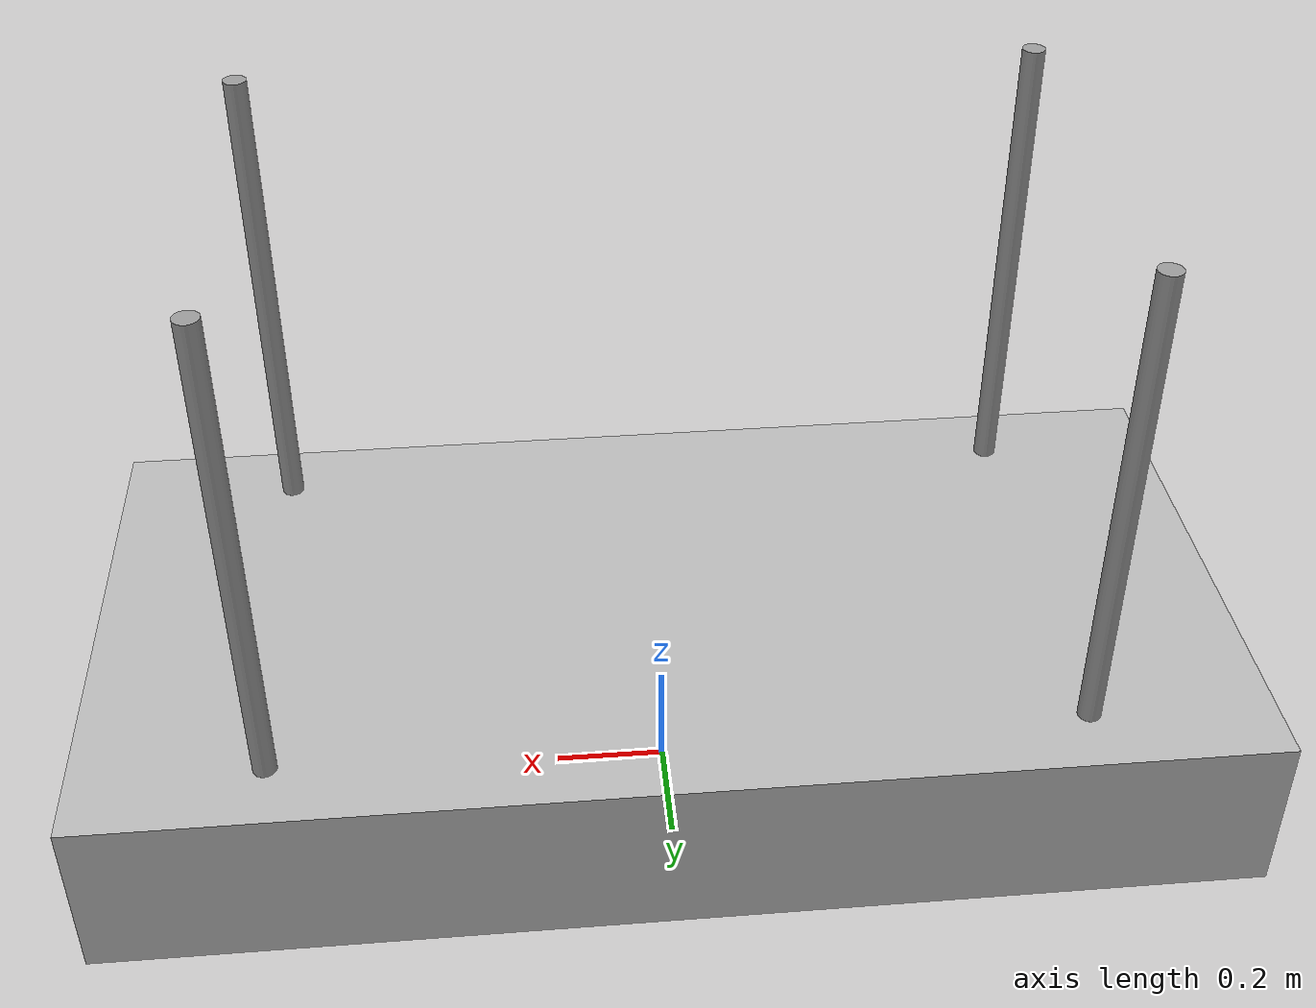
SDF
<?xml version='1.0'?>
<sdf version='1.5'>
  <model name="mobile_base">
    <link name='chassis'>
      <pose>0 0 .25 0 0 0</pose>

      <inertial>
        <mass>20.0</mass>
        <pose>-0.1 0 -0.1 0 0 0</pose>
        <inertia>
          <ixx>0.5</ixx>
          <iyy>1.0</iyy>
          <izz>0.1</izz>
        </inertia>
      </inertial>

      <collision name='collision'>
        <geometry>
          <box>
            <size>2 1 0.3</size>
          </box>
        </geometry>
      </collision>

      <visual name='visual'>
        <geometry>
          <box>
            <size>2 1 0.3</size>
          </box>
        </geometry>
      </visual>

      <collision name="front_left_leg">
        <pose>0.68 0.38 0.5 0 0 0</pose>
        <geometry>
          <cylinder>
            <radius>0.02</radius>
            <length>1.0</length>
          </cylinder>
        </geometry>
      </collision>
      <visual name="front_left_leg">
        <pose>0.68 0.38 0.5 0 0 0</pose>
        <geometry>
          <cylinder>
            <radius>0.02</radius>
            <length>1.0</length>
          </cylinder>
        </geometry>
        <material>
          <script>
            <uri>file://media/materials/scripts/gazebo.material</uri>
            <name>Gazebo/Grey</name>
          </script>
        </material>
      </visual>
      <collision name="front_right_leg">
        <pose>0.68 -0.38 0.5 0 0 0</pose>
        <geometry>
          <cylinder>
            <radius>0.02</radius>
            <length>1.0</length>
          </cylinder>
        </geometry>
      </collision>
      <visual name="front_right_leg">
        <pose>0.68 -0.38 0.5 0 0 0</pose>
        <geometry>
          <cylinder>
            <radius>0.02</radius>
            <length>1.0</length>
          </cylinder>
        </geometry>
        <material>
          <script>
            <uri>file://media/materials/scripts/gazebo.material</uri>
            <name>Gazebo/Grey</name>
          </script>
        </material>
      </visual>
      <collision name="back_right_leg">
        <pose>-0.68 -0.38 0.5 0 0 0</pose>
        <geometry>
          <cylinder>
            <radius>0.02</radius>
            <length>1.0</length>
          </cylinder>
        </geometry>
      </collision>
      <visual name="back_right_leg">
        <pose>-0.68 -0.38 0.5 0 0 0</pose>
        <geometry>
          <cylinder>
            <radius>0.02</radius>
            <length>1.0</length>
          </cylinder>
        </geometry>
        <material>
          <script>
            <uri>file://media/materials/scripts/gazebo.material</uri>
i            <name>Gazebo/Grey</name>
          </script>
        </material>
      </visual>
      <collision name="back_left_leg">
        <pose>-0.68 0.38 0.5 0 0 0</pose>
        <geometry>
          <cylinder>
            <radius>0.02</radius>
            <length>1.0</length>
          </cylinder>
        </geometry>
      </collision>
      <visual name="back_left_leg">
        <pose>-0.68 0.38 0.5 0 0 0</pose>
        <geometry>
          <cylinder>
            <radius>0.02</radius>
            <length>1.0</length>
          </cylinder>
        </geometry>
        <material>
          <script>
            <uri>file://media/materials/scripts/gazebo.material</uri>
            <name>Gazebo/Grey</name>
          </script>
        </material>
      </visual>
    </link>
  </model>

 </sdf>
